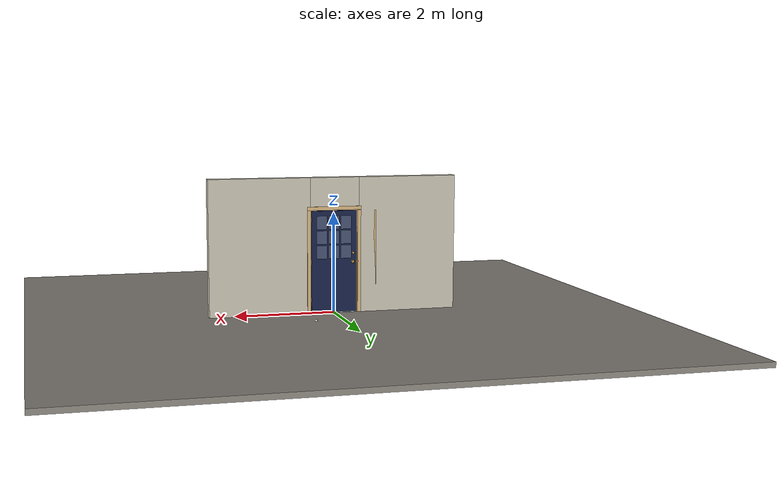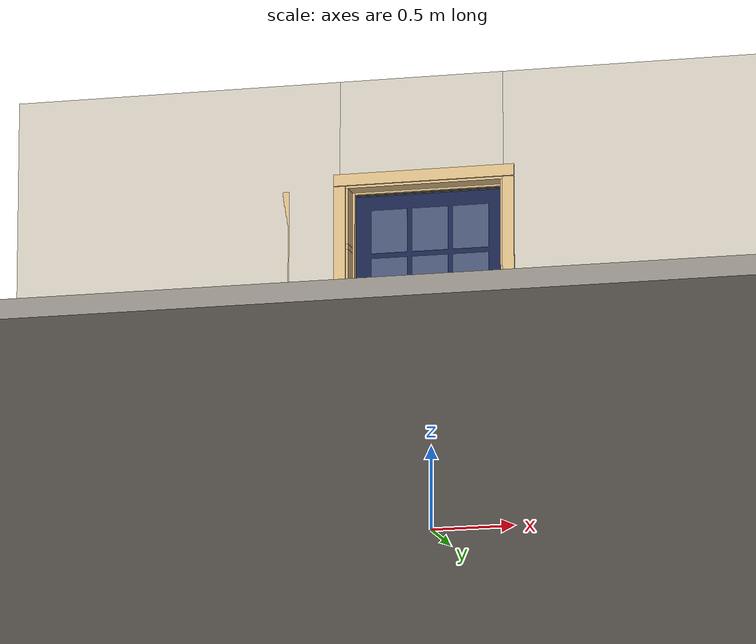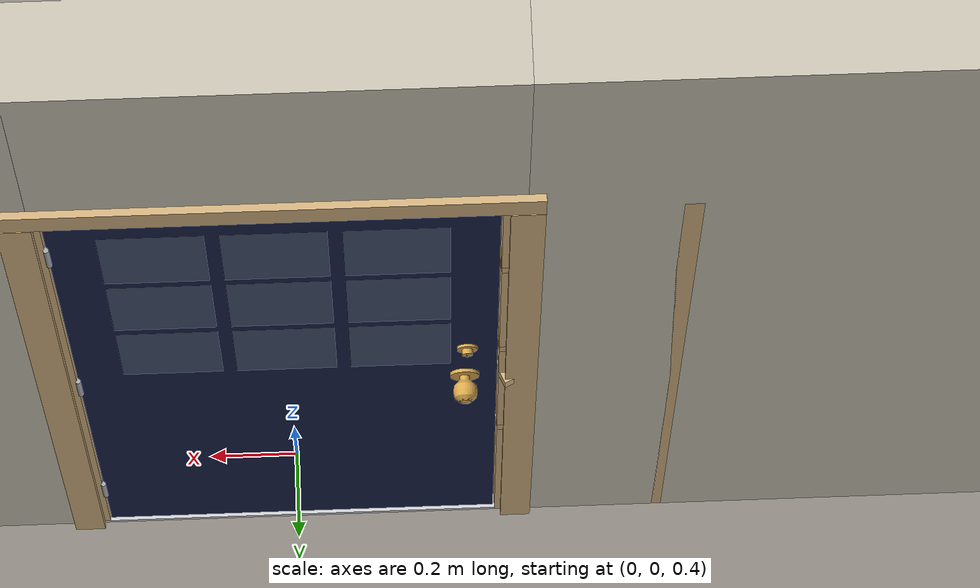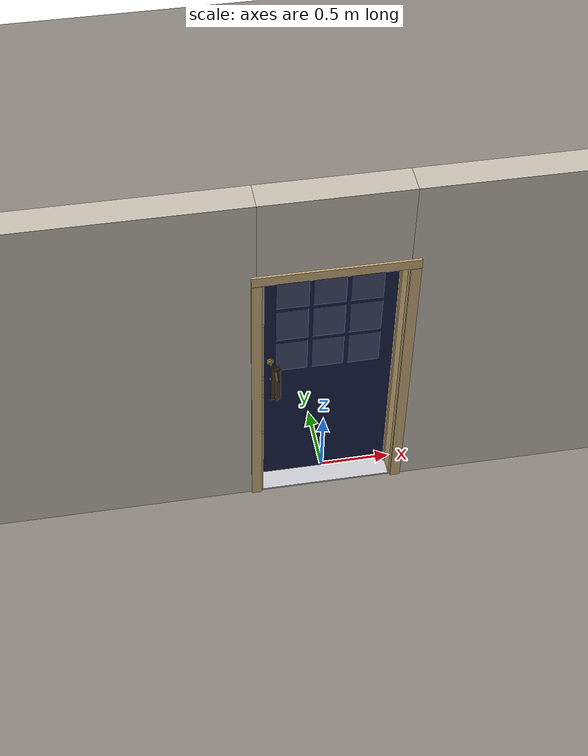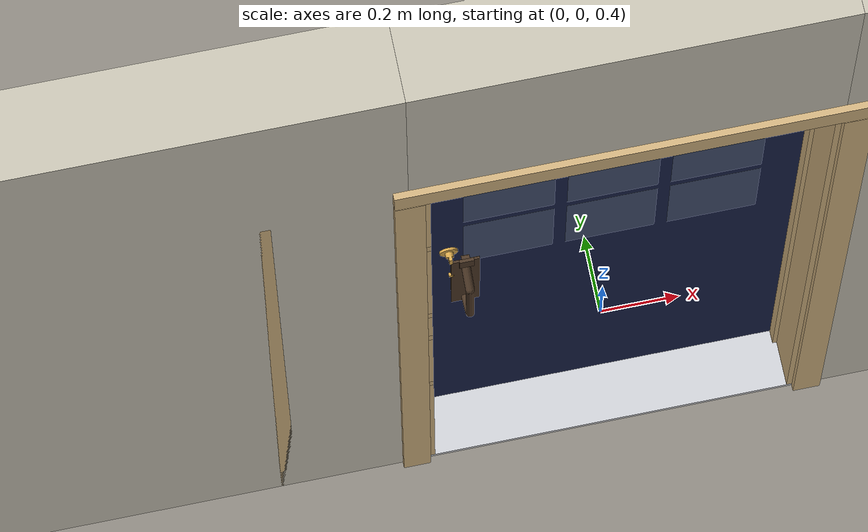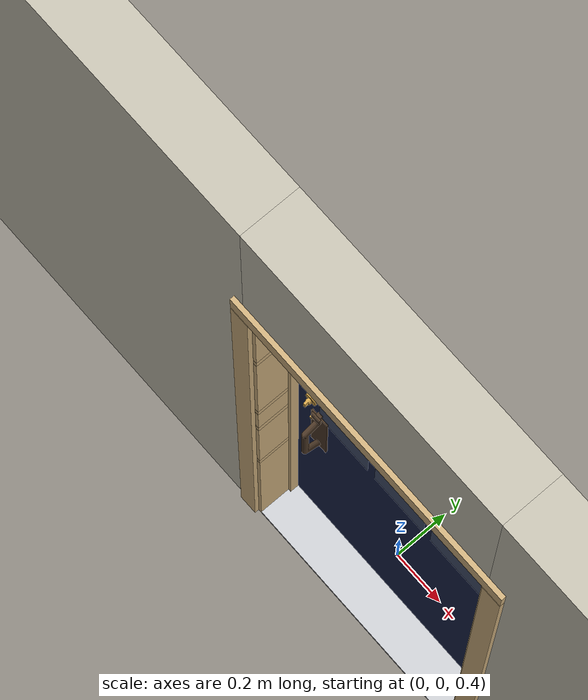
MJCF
<?xml version="1.0" ?>
<mujoco model="db0062_swing_single_full">
  <compiler angle="radian" meshdir="../../hardware" texturedir="../../textures" autolimits="true" inertiafromgeom="false"/>
  <option timestep="0.002" integrator="implicitfast" cone="elliptic" impratio="10" noslip_iterations="3">
    <flag multiccd="enable"/>
  </option>
  <size memory="16M"/>
  <default>
    <geom condim="4" solref="0.005 1" solimp="0.95 0.99 0.001"/>
    <joint solreflimit="0.005 1" solimplimit="0.95 0.99 0.001"/>
    <tendon solreflimit="0.005 1"/>
    <equality solref="0.002 1"/>
  </default>
  <visual>
    <headlight ambient="0.4 0.4 0.4" diffuse="0.7 0.7 0.7" specular="0.2 0.2 0.2"/>
    <quality shadowsize="4096"/>
    <map znear="0.01" zfar="60"/>
  </visual>
  <asset>
    <mesh name="cyl_face_e9e5036966" file="cyl_face_e9e5036966.obj"/>
    <mesh name="handleset_beb5526ad2" file="handleset_beb5526ad2.obj"/>
    <mesh name="hinge_2af0f4d6ca" file="hinge_2af0f4d6ca.obj"/>
    <mesh name="hinge_jamb_c0c0a62ada" file="hinge_jamb_c0c0a62ada.obj"/>
    <mesh name="knob_d1888f6f03" file="knob_d1888f6f03.obj"/>
    <mesh name="thumbturn_eb5c9899a3" file="thumbturn_eb5c9899a3.obj"/>
    <material name="mat_floor" rgba="0.55 0.53 0.5 1" specular="0.2" shininess="0.15" reflectance="0"/>
    <material name="mat_wall" rgba="0.78 0.76 0.7 1" specular="0.2" shininess="0.1" reflectance="0"/>
    <material name="mat_leaf" rgba="0.09 0.13 0.28 1" specular="0.2" shininess="0.55" reflectance="0"/>
    <material name="mat_glass" rgba="0.85 0.92 0.95 0.25" specular="0.2" shininess="0.95" reflectance="0.1"/>
    <material name="mat_hinge" rgba="0.65 0.66 0.68 1" specular="0.74" shininess="0.5" reflectance="0.36"/>
    <material name="mat_op_bronze" rgba="0.3 0.22 0.15 1" specular="0.74" shininess="0.5" reflectance="0.36"/>
    <material name="mat_op_brass" rgba="0.85 0.66 0.3 1" specular="0.8" shininess="0.75" reflectance="0.4"/>
    <material name="mat_trim" rgba="0.85 0.66 0.3 1" specular="0.8" shininess="0.75" reflectance="0.4"/>
    <material name="mat_bolt" rgba="0.85 0.66 0.3 1" specular="0.8" shininess="0.75" reflectance="0.4"/>
    <material name="mat_deadbolt" rgba="0.85 0.66 0.3 1" specular="0.8" shininess="0.75" reflectance="0.4"/>
    <material name="mat_frame" rgba="0.82 0.7 0.5 1" specular="0.2" shininess="0.45" reflectance="0"/>
    <material name="mat_seal" rgba="0.1 0.1 0.1 1" specular="0.2" shininess="0.1" reflectance="0"/>
    <material name="mat_threshold" rgba="0.8 0.81 0.83 1" specular="0.8" shininess="0.6" reflectance="0.4"/>
    <material name="mat_sidelite" rgba="0.85 0.92 0.95 0.25" specular="0.2" shininess="0.95" reflectance="0.1"/>
    <material name="mat_stop" rgba="0.9 0.9 0.92 1" specular="0.8" shininess="0.9" reflectance="0.4"/>
    <texture name="skybox" type="skybox" builtin="gradient" rgb1="0.6 0.7 0.85" rgb2="0.9 0.92 0.95" width="256" height="256"/>
  </asset>
  <worldbody>
    <light name="sun" pos="1.5 -2.5 4" dir="-0.3 0.5 -0.8" directional="true" diffuse="0.8 0.8 0.8" specular="0.3 0.3 0.3" castshadow="true"/>
    <light name="fill" pos="-1.5 2.5 3" dir="0.3 -0.5 -0.7" directional="true" diffuse="0.35 0.35 0.4" castshadow="false"/>
    <camera name="robot_view" pos="0 -2.613187 1.734312" xyaxes="1 0 0 0 0.26963 0.962964" fovy="52"/>
    <camera name="far_view" pos="0 2.471187 1.734312" xyaxes="-1 0 0 0 -0.26963 0.962964" fovy="52"/>
    <camera name="iso" pos="-1.932062 -2.206438 2.141063" xyaxes="0.741536 -0.670913 0 0.242917 0.268487 0.932151" fovy="46"/>
    <camera name="detail_handle" pos="-0.1715 -0.882 1.236" xyaxes="0.97561 0.219512 0 -0.070934 0.315262 0.94635" fovy="38"/>
    <geom name="floor" type="box" size="6 6 0.05" pos="0 0 -0.05" material="mat_floor" group="0" contype="1" conaffinity="1" friction="0.8 0.005 0.0001" density="2400"/>
    <geom name="wall_left" type="box" size="0.99525 0.1 1.35" pos="-1.50475 -0.071 1.35" material="mat_wall" group="0" contype="1" conaffinity="1" friction="0.6 0.005 0.0001" density="800"/>
    <geom name="wall_right" type="box" size="1.01025 0.1 1.35" pos="1.48975 -0.071 1.35" material="mat_wall" group="0" contype="1" conaffinity="1" friction="0.6 0.005 0.0001" density="800"/>
    <geom name="wall_header" type="box" size="0.4945 0.1 0.303" pos="-0.015 -0.071 2.397" material="mat_wall" group="0" contype="1" conaffinity="1" friction="0.6 0.005 0.0001" density="800"/>
    <geom name="hinge_0_jamb" type="mesh" mesh="hinge_jamb_c0c0a62ada" pos="0.4575 0.029 0.267" quat="0 0 0 1" material="mat_hinge" group="1" contype="0" conaffinity="0" density="7850"/>
    <geom name="hinge_1_jamb" type="mesh" mesh="hinge_jamb_c0c0a62ada" pos="0.4575 0.029 1.029" quat="0 0 0 1" material="mat_hinge" group="1" contype="0" conaffinity="0" density="7850"/>
    <geom name="hinge_2_jamb" type="mesh" mesh="hinge_jamb_c0c0a62ada" pos="0.4575 0.029 1.861" quat="0 0 0 1" material="mat_hinge" group="1" contype="0" conaffinity="0" density="7850"/>
    <geom name="leaf_deadbolt_strike_b" type="box" size="0.0155 0.003 0.0005" pos="-0.46 0 1.1725" quat="0.5 0.5 0.5 0.5" material="mat_deadbolt" group="1" contype="0" conaffinity="0" density="7800"/>
    <geom name="leaf_deadbolt_strike_l" type="box" size="0.003 0.0155 0.0005" pos="-0.46 -0.0125 1.191" quat="0.5 0.5 0.5 0.5" material="mat_deadbolt" group="1" contype="0" conaffinity="0" density="7800"/>
    <geom name="leaf_deadbolt_strike_t" type="box" size="0.0155 0.003 0.0005" pos="-0.46 0 1.2095" quat="0.5 0.5 0.5 0.5" material="mat_deadbolt" group="1" contype="0" conaffinity="0" density="7800"/>
    <geom name="leaf_deadbolt_strike_r" type="box" size="0.003 0.0155 0.0005" pos="-0.46 0.0125 1.191" quat="0.5 0.5 0.5 0.5" material="mat_deadbolt" group="1" contype="0" conaffinity="0" density="7800"/>
    <geom name="leaf_multipoint_upper_strike_b" type="box" size="0.0155 0.003 0.0005" pos="-0.46 0 1.6725" quat="0.5 0.5 0.5 0.5" material="mat_deadbolt" group="1" contype="0" conaffinity="0" density="7800"/>
    <geom name="leaf_multipoint_upper_strike_l" type="box" size="0.003 0.0155 0.0005" pos="-0.46 -0.0125 1.691" quat="0.5 0.5 0.5 0.5" material="mat_deadbolt" group="1" contype="0" conaffinity="0" density="7800"/>
    <geom name="leaf_multipoint_upper_strike_t" type="box" size="0.0155 0.003 0.0005" pos="-0.46 0 1.7095" quat="0.5 0.5 0.5 0.5" material="mat_deadbolt" group="1" contype="0" conaffinity="0" density="7800"/>
    <geom name="leaf_multipoint_upper_strike_r" type="box" size="0.003 0.0155 0.0005" pos="-0.46 0.0125 1.691" quat="0.5 0.5 0.5 0.5" material="mat_deadbolt" group="1" contype="0" conaffinity="0" density="7800"/>
    <geom name="leaf_multipoint_lower_strike_b" type="box" size="0.0155 0.003 0.0005" pos="-0.46 0 0.6225" quat="0.5 0.5 0.5 0.5" material="mat_deadbolt" group="1" contype="0" conaffinity="0" density="7800"/>
    <geom name="leaf_multipoint_lower_strike_l" type="box" size="0.003 0.0155 0.0005" pos="-0.46 -0.0125 0.641" quat="0.5 0.5 0.5 0.5" material="mat_deadbolt" group="1" contype="0" conaffinity="0" density="7800"/>
    <geom name="leaf_multipoint_lower_strike_t" type="box" size="0.0155 0.003 0.0005" pos="-0.46 0 0.6595" quat="0.5 0.5 0.5 0.5" material="mat_deadbolt" group="1" contype="0" conaffinity="0" density="7800"/>
    <geom name="leaf_multipoint_lower_strike_r" type="box" size="0.003 0.0155 0.0005" pos="-0.46 0.0125 0.641" quat="0.5 0.5 0.5 0.5" material="mat_deadbolt" group="1" contype="0" conaffinity="0" density="7800"/>
    <geom name="jamb_hinge" type="box" size="0.0095 0.1 1.0225" pos="0.47 -0.071 1.0225" material="mat_frame" group="0" contype="1" conaffinity="1" friction="0.6 0.005 0.0001" density="400"/>
    <geom name="strike_641_wall_n" type="box" size="0.0245 0.08075 0.0155" pos="-0.485 -0.09025 0.641" material="mat_frame" group="0" contype="1" conaffinity="1" friction="0.6 0.005 0.0001" density="400"/>
    <geom name="strike_641_wall_p" type="box" size="0.0245 0.00975 0.0155" pos="-0.485 0.01925 0.641" material="mat_frame" group="0" contype="1" conaffinity="1" friction="0.6 0.005 0.0001" density="400"/>
    <geom name="strike_641_back" type="box" size="0.0125 0.0095 0.0155" pos="-0.497 0 0.641" material="mat_frame" group="0" contype="1" conaffinity="1" friction="0.6 0.005 0.0001" density="400"/>
    <geom name="strike_1016_wall_n" type="box" size="0.0245 0.081575 0.0167" pos="-0.485 -0.089425 1.016" material="mat_frame" group="0" contype="1" conaffinity="1" friction="0.6 0.005 0.0001" density="400"/>
    <geom name="strike_1016_wall_p" type="box" size="0.0245 0.008 0.0167" pos="-0.485 0.01585 1.016" material="mat_frame" group="0" contype="1" conaffinity="1" friction="0.6 0.005 0.0001" density="400"/>
    <geom name="strike_1016_ramp" type="box" size="0.0245 0.01649 0.0167" pos="-0.489636 0.028673 1.016" quat="0.977148 0 0 0.212558" material="mat_frame" group="0" contype="1" conaffinity="1" friction="0.12 0.005 0.0001" density="400"/>
    <geom name="strike_1016_back" type="box" size="0.01615 0.00785 0.0167" pos="-0.49335 0 1.016" material="mat_frame" group="0" contype="1" conaffinity="1" friction="0.6 0.005 0.0001" density="400"/>
    <geom name="strike_1191_wall_n" type="box" size="0.0245 0.08075 0.0155" pos="-0.485 -0.09025 1.191" material="mat_frame" group="0" contype="1" conaffinity="1" friction="0.6 0.005 0.0001" density="400"/>
    <geom name="strike_1191_wall_p" type="box" size="0.0245 0.00975 0.0155" pos="-0.485 0.01925 1.191" material="mat_frame" group="0" contype="1" conaffinity="1" friction="0.6 0.005 0.0001" density="400"/>
    <geom name="strike_1191_back" type="box" size="0.0125 0.0095 0.0155" pos="-0.497 0 1.191" material="mat_frame" group="0" contype="1" conaffinity="1" friction="0.6 0.005 0.0001" density="400"/>
    <geom name="strike_1691_wall_n" type="box" size="0.0245 0.08075 0.0155" pos="-0.485 -0.09025 1.691" material="mat_frame" group="0" contype="1" conaffinity="1" friction="0.6 0.005 0.0001" density="400"/>
    <geom name="strike_1691_wall_p" type="box" size="0.0245 0.00975 0.0155" pos="-0.485 0.01925 1.691" material="mat_frame" group="0" contype="1" conaffinity="1" friction="0.6 0.005 0.0001" density="400"/>
    <geom name="strike_1691_back" type="box" size="0.0125 0.0095 0.0155" pos="-0.497 0 1.691" material="mat_frame" group="0" contype="1" conaffinity="1" friction="0.6 0.005 0.0001" density="400"/>
    <geom name="jamb_strike_0" type="box" size="0.0245 0.1 0.31275" pos="-0.485 -0.071 0.31275" material="mat_frame" group="0" contype="1" conaffinity="1" friction="0.6 0.005 0.0001" density="400"/>
    <geom name="jamb_strike_1" type="box" size="0.0245 0.1 0.1714" pos="-0.485 -0.071 0.8279" material="mat_frame" group="0" contype="1" conaffinity="1" friction="0.6 0.005 0.0001" density="400"/>
    <geom name="jamb_strike_2" type="box" size="0.0245 0.1 0.0714" pos="-0.485 -0.071 1.1041" material="mat_frame" group="0" contype="1" conaffinity="1" friction="0.6 0.005 0.0001" density="400"/>
    <geom name="jamb_strike_3" type="box" size="0.0245 0.1 0.2345" pos="-0.485 -0.071 1.441" material="mat_frame" group="0" contype="1" conaffinity="1" friction="0.6 0.005 0.0001" density="400"/>
    <geom name="jamb_strike_4" type="box" size="0.0245 0.1 0.16925" pos="-0.485 -0.071 1.87575" material="mat_frame" group="0" contype="1" conaffinity="1" friction="0.6 0.005 0.0001" density="400"/>
    <geom name="jamb_head" type="box" size="0.4945 0.1 0.0095" pos="-0.015 -0.071 2.0545" material="mat_frame" group="0" contype="1" conaffinity="1" friction="0.6 0.005 0.0001" density="400"/>
    <geom name="head_stud" type="box" size="0.4945 0.1 0.015" pos="-0.015 -0.071 2.079" material="mat_wall" group="0" contype="1" conaffinity="1" friction="0.6 0.005 0.0001" density="500"/>
    <geom name="stop_hinge" type="box" size="0.0055 0.016 1.0225" pos="0.455 -0.0385 1.0225" material="mat_frame" group="0" contype="1" conaffinity="1" friction="0.6 0.005 0.0001" density="400"/>
    <geom name="stop_strike" type="box" size="0.0055 0.016 1.0225" pos="-0.455 -0.0385 1.0225" material="mat_frame" group="0" contype="1" conaffinity="1" friction="0.6 0.005 0.0001" density="400"/>
    <geom name="stop_head" type="box" size="0.4605 0.016 0.0055" pos="0 -0.0385 2.0395" material="mat_frame" group="0" contype="1" conaffinity="1" friction="0.6 0.005 0.0001" density="400"/>
    <geom name="seal_hinge" type="box" size="0.004 0.004 1.0225" pos="0.4575 -0.026 1.0225" material="mat_seal" group="1" contype="0" conaffinity="0" density="1100"/>
    <geom name="seal_strike" type="box" size="0.004 0.004 1.0225" pos="-0.4575 -0.026 1.0225" material="mat_seal" group="1" contype="0" conaffinity="0" density="1100"/>
    <geom name="seal_head" type="box" size="0.4405 0.004 0.008" pos="0 -0.026 2.033" material="mat_seal" group="1" contype="0" conaffinity="0" density="1100"/>
    <geom name="casing_l_n" type="box" size="0.035 0.008 1.032" pos="-0.5095 -0.179 1.0225" material="mat_frame" group="2" contype="0" conaffinity="0" density="400"/>
    <geom name="casing_r_n" type="box" size="0.035 0.008 1.032" pos="0.5095 -0.179 1.0225" material="mat_frame" group="2" contype="0" conaffinity="0" density="400"/>
    <geom name="casing_h_n" type="box" size="0.5445 0.008 0.035" pos="0 -0.179 2.094" material="mat_frame" group="2" contype="0" conaffinity="0" density="400"/>
    <geom name="casing_l_p" type="box" size="0.035 0.008 1.032" pos="-0.5095 0.037 1.0225" material="mat_frame" group="2" contype="0" conaffinity="0" density="400"/>
    <geom name="casing_r_p" type="box" size="0.035 0.008 1.032" pos="0.5095 0.037 1.0225" material="mat_frame" group="2" contype="0" conaffinity="0" density="400"/>
    <geom name="casing_h_p" type="box" size="0.5445 0.008 0.035" pos="0 0.037 2.094" material="mat_frame" group="2" contype="0" conaffinity="0" density="400"/>
    <geom name="threshold" type="box" size="0.4795 0.1 0.0065" pos="0 -0.071 0.0065" material="mat_threshold" group="0" contype="1" conaffinity="1" friction="0.5 0.005 0.0001" density="2700"/>
    <geom name="sidelite_glass" type="box" size="0.15 0.003 0.9725" pos="-0.6705 0 1.0225" material="mat_sidelite" group="0" contype="1" conaffinity="1" friction="0.6 0.005 0.0001" density="2500"/>
    <geom name="sidelite_frame" type="box" size="0.02 0.1 1.0225" pos="-0.8405 -0.071 1.0225" material="mat_frame" group="0" contype="1" conaffinity="1" friction="0.6 0.005 0.0001" density="600"/>
    <geom name="floor_stop_dome" type="sphere" size="0.025" pos="0.545135 0.801201 0" material="mat_stop" group="0" contype="1" conaffinity="1" friction="0.6 0.005 0.0001" density="7000"/>
    <site name="approach_point" pos="0 -1.5 0" quat="1 0 0 0" size="0.05" rgba="0.2 0.9 0.2 0.5" group="4"/>
    <site name="goal_point" pos="0 1.5 0" quat="1 0 0 0" size="0.05" rgba="0.2 0.9 0.2 0.5" group="4"/>
    <site name="door_plane_center" pos="0 0 1.0225" quat="1 0 0 0" size="0.02" rgba="0.2 0.9 0.2 0.5" group="4"/>
    <body name="leaf" pos="0.4605 0 0">
      <inertial pos="-0.475953 -0.001935 1.027675" mass="29.817573" quat="0.498173 0.503837 -0.495831 0.502119" diaginertia="2.327556042 9.699531426 12.009070761"/>
      <joint name="leaf_hinge" type="hinge" axis="0 0 -1" pos="-0.003 0.029 0" limited="true" range="0 1.658063" solreflimit="0.02 1" damping="2.25611" frictionloss="2.191472" stiffness="6.6" springref="-0.431654" armature="0.02"/>
      <geom name="leaf_slab" type="box" size="0.457 0.022 1.012" pos="-0.46 0 1.029" material="mat_leaf" group="0" contype="1" conaffinity="1" friction="0.4 0.005 0.0001" density="1"/>
      <geom name="leaf_glass_0" type="box" size="0.10882 0.0228 0.13168" pos="-0.21236 0 1.2214" material="mat_glass" group="1" contype="0" conaffinity="0" density="1"/>
      <geom name="leaf_glass_1" type="box" size="0.10882 0.0228 0.13168" pos="-0.46 0 1.2214" material="mat_glass" group="1" contype="0" conaffinity="0" density="1"/>
      <geom name="leaf_glass_2" type="box" size="0.10882 0.0228 0.13168" pos="-0.70764 0 1.2214" material="mat_glass" group="1" contype="0" conaffinity="0" density="1"/>
      <geom name="leaf_glass_3" type="box" size="0.10882 0.0228 0.13168" pos="-0.21236 0 1.51476" material="mat_glass" group="1" contype="0" conaffinity="0" density="1"/>
      <geom name="leaf_glass_4" type="box" size="0.10882 0.0228 0.13168" pos="-0.46 0 1.51476" material="mat_glass" group="1" contype="0" conaffinity="0" density="1"/>
      <geom name="leaf_glass_5" type="box" size="0.10882 0.0228 0.13168" pos="-0.70764 0 1.51476" material="mat_glass" group="1" contype="0" conaffinity="0" density="1"/>
      <geom name="leaf_glass_6" type="box" size="0.10882 0.0228 0.13168" pos="-0.21236 0 1.80812" material="mat_glass" group="1" contype="0" conaffinity="0" density="1"/>
      <geom name="leaf_glass_7" type="box" size="0.10882 0.0228 0.13168" pos="-0.46 0 1.80812" material="mat_glass" group="1" contype="0" conaffinity="0" density="1"/>
      <geom name="leaf_glass_8" type="box" size="0.10882 0.0228 0.13168" pos="-0.70764 0 1.80812" material="mat_glass" group="1" contype="0" conaffinity="0" density="1"/>
      <geom name="hinge_0" type="mesh" mesh="hinge_2af0f4d6ca" pos="-0.003 0.029 0.267" quat="0 0 0 1" material="mat_hinge" group="1" contype="0" conaffinity="0" density="7850"/>
      <geom name="hinge_1" type="mesh" mesh="hinge_2af0f4d6ca" pos="-0.003 0.029 1.029" quat="0 0 0 1" material="mat_hinge" group="1" contype="0" conaffinity="0" density="7850"/>
      <geom name="hinge_2" type="mesh" mesh="hinge_2af0f4d6ca" pos="-0.003 0.029 1.861" quat="0 0 0 1" material="mat_hinge" group="1" contype="0" conaffinity="0" density="7850"/>
      <geom name="leaf_handleset_n" type="mesh" mesh="handleset_beb5526ad2" pos="-0.812 -0.022 0.956" quat="0.707107 0.707107 0 0" material="mat_op_bronze" group="1" contype="0" conaffinity="0" density="3000"/>
      <geom name="leaf_handleset_col_n" type="capsule" size="0.011 0.09" pos="-0.812 -0.082 0.956" material="mat_op_bronze" group="3" contype="1" conaffinity="1" rgba="0.8 0.3 0.3 0.25" friction="0.7 0.01 0.0001" density="3000"/>
      <geom name="leaf_latch_bolt_faceplate" type="box" size="0.0006 0.01235 0.0267" pos="-0.9164 0 1.016" material="mat_bolt" group="1" contype="0" conaffinity="0" density="8500"/>
      <geom name="leaf_deadbolt_faceplate" type="box" size="0.0006 0.014 0.0245" pos="-0.9164 0 1.191" material="mat_deadbolt" group="1" contype="0" conaffinity="0" density="8500"/>
      <geom name="leaf_deadbolt_cylinder_face" type="mesh" mesh="cyl_face_e9e5036966" pos="-0.852 0.022 1.191" quat="0 0 0.707107 0.707107" material="mat_deadbolt" group="1" contype="0" conaffinity="0" density="7100"/>
      <geom name="leaf_multipoint_upper_faceplate" type="box" size="0.0006 0.014 0.0245" pos="-0.9164 0 1.691" material="mat_deadbolt" group="1" contype="0" conaffinity="0" density="8500"/>
      <geom name="leaf_multipoint_lower_faceplate" type="box" size="0.0006 0.014 0.0245" pos="-0.9164 0 0.641" material="mat_deadbolt" group="1" contype="0" conaffinity="0" density="8500"/>
      <geom name="leaf_multipoint_strip" type="box" size="0.0004 0.01 0.992" pos="-0.9166 0 1.029" material="mat_deadbolt" group="1" contype="0" conaffinity="0" density="8500"/>
      <site name="leaf_handleset_grip_n" pos="-0.812 -0.082 0.956" quat="1 0 0 0" size="0.012" rgba="0.2 0.9 0.2 0.5" group="4"/>
      <site name="leaf_edge_mid" pos="-0.917 0 1.012" quat="1 0 0 0" size="0.02" rgba="0.2 0.9 0.2 0.5" group="4"/>
      <body name="leaf_handle" pos="-0.847 0 1.016">
        <inertial pos="0 0.052948 0" mass="0.60261" quat="0.5 0.5 0.5 0.5" diaginertia="0.000156736 0.000451151 0.000451151"/>
        <joint name="leaf_handle_hinge" type="hinge" axis="0 1 0" limited="true" range="0 0.87" damping="0.142525" frictionloss="0.038" stiffness="0.5" springref="-0.5" armature="0.01"/>
        <geom name="leaf_handle_spindle" type="cylinder" size="0.006 0.03" pos="0 0 0" quat="0.707107 -0.707107 0 0" material="mat_op_brass" group="1" contype="0" conaffinity="0" density="7850"/>
        <geom name="leaf_handle_knob_p" type="mesh" mesh="knob_d1888f6f03" pos="0 0.022 0" quat="0 0 0.707107 0.707107" material="mat_op_brass" group="1" contype="0" conaffinity="0" density="3000"/>
        <geom name="leaf_handle_knob_col_p" type="sphere" size="0.0243" pos="0 0.0685 0" material="mat_op_brass" group="0" contype="1" conaffinity="1" friction="0.9 0.01 0.0001" density="3000"/>
        <geom name="leaf_handle_knob_neck_p" type="cylinder" size="0.011 0.012" pos="0 0.034 0" quat="0.707107 -0.707107 0 0" material="mat_op_brass" group="3" contype="1" conaffinity="1" rgba="0.8 0.3 0.3 0.25" friction="0.6 0.005 0.0001" density="3000"/>
        <site name="leaf_handle_grip_p" pos="0 0.0685 0" quat="1 0 0 0" size="0.012" rgba="0.2 0.9 0.2 0.5" group="4"/>
      </body>
      <body name="leaf_thumbpiece" pos="-0.812 -0.04 1.128">
        <inertial pos="0 0.004 0" mass="0.05184" quat="-0.5 0.5 0.5 0.5" diaginertia="0.000006981 0.000007488 0.000009124"/>
        <joint name="leaf_thumbpiece_hinge" type="hinge" axis="-1 0 0" pos="0 0 0.02" limited="true" range="0 0.35" damping="0.219407" frictionloss="0.058" stiffness="1.2" springref="-0.416667" armature="0.01"/>
        <geom name="leaf_thumbpiece_geom" type="box" size="0.018 0.004 0.02" pos="0 0 0" material="mat_op_bronze" group="0" contype="1" conaffinity="1" friction="0.6 0.005 0.0001" density="3000"/>
        <geom name="leaf_thumbpiece_boss" type="box" size="0.01 0.012 0.006" pos="0 0.012 0" material="mat_op_bronze" group="1" contype="0" conaffinity="0" density="3000"/>
        <site name="leaf_thumb_push" pos="0 -0.005 0.01" quat="1 0 0 0" size="0.01" rgba="0.2 0.9 0.2 0.5" group="4"/>
      </body>
      <body name="leaf_latch_bolt" pos="-0.917 0 1.016">
        <inertial pos="0.00865 0 0" mass="0.041419" quat="0.92388 0.382683 0 0" diaginertia="0.000000798 0.000005598 0.000005598"/>
        <joint name="leaf_latch_bolt_slide" type="slide" axis="1 0 0" limited="true" range="0 0.0127" damping="2" frictionloss="0.3" stiffness="300" springref="-0.008333" armature="0.1"/>
        <geom name="leaf_latch_bolt_capsule" type="capsule" size="0.00635 0.015" pos="0.00865 0 0" quat="0.707107 0 -0.707107 0" material="mat_bolt" group="0" contype="1" conaffinity="1" friction="0.2 0.005 0.0001" density="8500"/>
      </body>
      <body name="leaf_deadbolt" pos="-0.917 0 1.191">
        <inertial pos="0.005 0 0" mass="0.17" quat="0 0 0.707107 0.707107" diaginertia="0.000012481 0.000039043 0.000044271"/>
        <joint name="leaf_deadbolt_slide" type="slide" axis="1 0 0" limited="true" range="0 0.02" damping="5" frictionloss="1.5" armature="0.1"/>
        <geom name="leaf_deadbolt_box" type="box" size="0.025 0.008 0.0125" pos="0.005 0 0" material="mat_deadbolt" group="0" contype="1" conaffinity="1" friction="0.3 0.005 0.0001" density="8500"/>
      </body>
      <body name="leaf_deadbolt_thumbturn" pos="-0.852 -0.022 1.191">
        <inertial pos="0 -0.012928 0" mass="0.178946" quat="0.5 0.5 0.5 0.5" diaginertia="0.000026045 0.000026215 0.000032438"/>
        <joint name="leaf_deadbolt_thumbturn_hinge" type="hinge" axis="0 1 0" limited="true" range="0 1.5708" damping="0.05" frictionloss="0.3" armature="0.005"/>
        <geom name="leaf_deadbolt_thumbturn_mesh" type="mesh" mesh="thumbturn_eb5c9899a3" pos="0 0 0" quat="0 0 -0.707107 0.707107" material="mat_deadbolt" group="0" contype="1" conaffinity="1" friction="0.6 0.005 0.0001" density="7100"/>
        <geom name="leaf_deadbolt_thumbturn_col" type="box" size="0.006 0.012 0.016" pos="0 -0.02 0" material="mat_deadbolt" group="3" contype="1" conaffinity="1" rgba="0.8 0.3 0.3 0.25" friction="0.6 0.005 0.0001" density="7100"/>
      </body>
      <body name="leaf_multipoint_upper" pos="-0.917 0 1.691">
        <inertial pos="0.005 0 0" mass="0.17" quat="0 0 0.707107 0.707107" diaginertia="0.000012481 0.000039043 0.000044271"/>
        <joint name="leaf_multipoint_upper_slide" type="slide" axis="1 0 0" limited="true" range="0 0.02" damping="5" frictionloss="1.5" armature="0.1"/>
        <geom name="leaf_multipoint_upper_box" type="box" size="0.025 0.008 0.0125" pos="0.005 0 0" material="mat_deadbolt" group="0" contype="1" conaffinity="1" friction="0.3 0.005 0.0001" density="8500"/>
      </body>
      <body name="leaf_multipoint_lower" pos="-0.917 0 0.641">
        <inertial pos="0.005 0 0" mass="0.17" quat="0 0 0.707107 0.707107" diaginertia="0.000012481 0.000039043 0.000044271"/>
        <joint name="leaf_multipoint_lower_slide" type="slide" axis="1 0 0" limited="true" range="0 0.02" damping="5" frictionloss="1.5" armature="0.1"/>
        <geom name="leaf_multipoint_lower_box" type="box" size="0.025 0.008 0.0125" pos="0.005 0 0" material="mat_deadbolt" group="0" contype="1" conaffinity="1" friction="0.3 0.005 0.0001" density="8500"/>
      </body>
    </body>
  </worldbody>
  <tendon>
    <fixed name="leaf_thumb_coupling" limited="true" range="0 10">
      <joint joint="leaf_latch_bolt_slide" coef="1"/>
      <joint joint="leaf_thumbpiece_hinge" coef="-0.039688"/>
    </fixed>
    <fixed name="leaf_latch_bolt_coupling" limited="true" range="0 10">
      <joint joint="leaf_latch_bolt_slide" coef="1"/>
      <joint joint="leaf_handle_hinge" coef="-0.015679"/>
    </fixed>
  </tendon>
  <equality>
    <joint name="leaf_deadbolt_couple" joint1="leaf_deadbolt_slide" joint2="leaf_deadbolt_thumbturn_hinge" polycoef="0 0.012732 0 0 0" active="true"/>
    <joint name="leaf_multipoint_upper_couple" joint1="leaf_multipoint_upper_slide" joint2="leaf_deadbolt_slide" polycoef="0 1 0 0 0" active="true"/>
    <joint name="leaf_multipoint_lower_couple" joint1="leaf_multipoint_lower_slide" joint2="leaf_deadbolt_slide" polycoef="0 1 0 0 0" active="true"/>
  </equality>
  <contact>
    <exclude body1="leaf_deadbolt" body2="leaf_deadbolt_thumbturn"/>
  </contact>
  <sensor>
    <jointpos name="leaf_hinge_pos" joint="leaf_hinge"/>
    <jointvel name="leaf_hinge_vel" joint="leaf_hinge"/>
    <jointpos name="leaf_handle_hinge_pos" joint="leaf_handle_hinge"/>
    <jointvel name="leaf_handle_hinge_vel" joint="leaf_handle_hinge"/>
    <jointpos name="leaf_thumbpiece_hinge_pos" joint="leaf_thumbpiece_hinge"/>
    <jointvel name="leaf_thumbpiece_hinge_vel" joint="leaf_thumbpiece_hinge"/>
    <jointpos name="leaf_latch_bolt_slide_pos" joint="leaf_latch_bolt_slide"/>
    <jointvel name="leaf_latch_bolt_slide_vel" joint="leaf_latch_bolt_slide"/>
    <jointpos name="leaf_deadbolt_slide_pos" joint="leaf_deadbolt_slide"/>
    <jointvel name="leaf_deadbolt_slide_vel" joint="leaf_deadbolt_slide"/>
    <jointpos name="leaf_deadbolt_thumbturn_hinge_pos" joint="leaf_deadbolt_thumbturn_hinge"/>
    <jointvel name="leaf_deadbolt_thumbturn_hinge_vel" joint="leaf_deadbolt_thumbturn_hinge"/>
    <jointpos name="leaf_multipoint_upper_slide_pos" joint="leaf_multipoint_upper_slide"/>
    <jointvel name="leaf_multipoint_upper_slide_vel" joint="leaf_multipoint_upper_slide"/>
    <jointpos name="leaf_multipoint_lower_slide_pos" joint="leaf_multipoint_lower_slide"/>
    <jointvel name="leaf_multipoint_lower_slide_vel" joint="leaf_multipoint_lower_slide"/>
  </sensor>
</mujoco>
